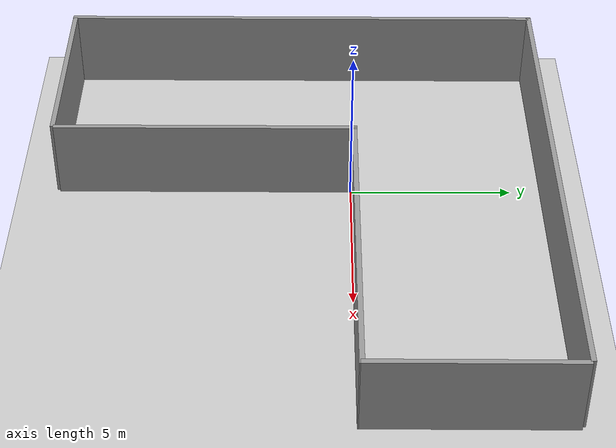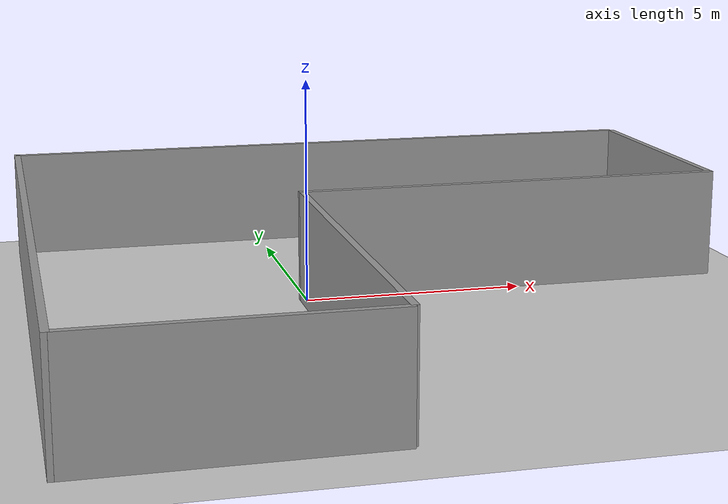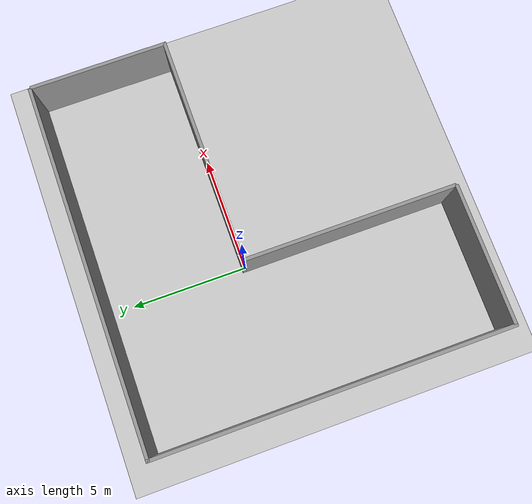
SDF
<sdf version="1.7">
 <world name="default">
  <light name="sun" type="directional">
   <pose>0 0 10 0 -0 0</pose>
   <diffuse>0.8 0.8 0.8 1</diffuse>
   <specular>0.2 0.2 0.2 1</specular>
   <attenuation>
    <range>1000</range>
    <constant>0.9</constant>
    <linear>0.01</linear>
    <quadratic>0.001</quadratic>
   </attenuation>
   <direction>-0.5 0.1 -0.9</direction>
   <spot><inner_angle>0</inner_angle><outer_angle>0</outer_angle><falloff>0</falloff></spot>
  </light>
  <model name="ground_plane">
   <static>1</static>
   <link name="link">
    <collision name="collision">
     <geometry><plane><normal>0 0 1</normal><size>100 100</size></plane></geometry>
     <surface><friction><ode><mu>100</mu><mu2>50</mu2></ode></friction></surface>
    </collision>
    <visual name="visual">
     <cast_shadows>0</cast_shadows>
     <geometry><plane><normal>0 0 1</normal><size>100 100</size></plane></geometry>
     <material>
      <script><uri>file://media/materials/scripts/gazebo.material</uri><name>Gazebo/Grey</name></script>
     </material>
    </visual>
   </link>
  </model>
  <gravity>0 0 -9.8</gravity>
  <magnetic_field>6e-06 2.3e-05 -4.2e-05</magnetic_field>
  <atmosphere type="adiabatic"/>
  <physics type="ode">
   <max_step_size>0.001</max_step_size>
   <real_time_factor>1</real_time_factor>
   <real_time_update_rate>1000</real_time_update_rate>
  </physics>
  <scene><ambient>0.4 0.4 0.4 1</ambient><background>0.7 0.7 0.7 1</background><shadows>1</shadows></scene>
  <audio><device>default</device></audio>
  <spherical_coordinates>
   <surface_model>EARTH_WGS84</surface_model>
   <latitude_deg>0</latitude_deg>
   <longitude_deg>0</longitude_deg>
   <elevation>0</elevation>
   <heading_deg>0</heading_deg>
  </spherical_coordinates>
  <model name="S1">
   <pose>1.82745 -1.55687 0 0 -0 0</pose>
   <link name="Wall_15">
    <collision name="Wall_15_Collision">
     <geometry><box><size>10 0.15 2.5</size></box></geometry>
     <pose>0 0 1.25 0 -0 0</pose>
    </collision>
    <visual name="Wall_15_Visual">
     <pose>0 0 1.25 0 -0 0</pose>
     <geometry><box><size>10 0.15 2.5</size></box></geometry>
     <material>
      <script><uri>file://media/materials/scripts/gazebo.material</uri><name>Gazebo/Grey</name></script>
      <ambient>1 1 1 1</ambient>
     </material>
     <meta><layer>0</layer></meta>
    </visual>
    <pose>3.01482 1.64039 0 0 -0 0</pose>
   </link>
   <link name="Wall_16">
    <collision name="Wall_16_Collision">
     <geometry><box><size>5.92964 0.15 2.5</size></box></geometry>
     <pose>0 0 1.25 0 -0 0</pose>
    </collision>
    <visual name="Wall_16_Visual">
     <pose>0 0 1.25 0 -0 0</pose>
     <geometry><box><size>5.92964 0.15 2.5</size></box></geometry>
     <material>
      <script><uri>file://media/materials/scripts/gazebo.material</uri><name>Gazebo/Grey</name></script>
      <ambient>1 1 1 1</ambient>
     </material>
     <meta><layer>0</layer></meta>
    </visual>
    <pose>7.93982 4.56539 0 0 -0 1.5708</pose>
   </link>
   <link name="Wall_18">
    <collision name="Wall_18_Collision">
     <geometry><box><size>9.25 0.15 2.5</size></box></geometry>
     <pose>0 0 1.25 0 -0 0</pose>
    </collision>
    <visual name="Wall_18_Visual">
     <pose>0 0 1.25 0 -0 0</pose>
     <geometry><box><size>9.25 0.15 2.5</size></box></geometry>
     <material>
      <script><uri>file://media/materials/scripts/gazebo.material</uri><name>Gazebo/Grey</name></script>
      <ambient>1 1 1 1</ambient>
     </material>
     <meta><layer>0</layer></meta>
    </visual>
    <pose>-1.91018 -2.90961 0 0 -0 -1.5708</pose>
   </link>
   <link name="Wall_2">
    <collision name="Wall_2_Collision">
     <geometry><box><size>15.8945 0.15 2.5</size></box></geometry>
     <pose>0 0 1.25 0 -0 0</pose>
    </collision>
    <visual name="Wall_2_Visual">
     <pose>0 0 1.25 0 -0 0</pose>
     <geometry><box><size>15.8945 0.15 2.5</size></box></geometry>
     <material>
      <script><uri>file://media/materials/scripts/gazebo.material</uri><name>Gazebo/Grey</name></script>
      <ambient>1 1 1 1</ambient>
     </material>
     <meta><layer>0</layer></meta>
    </visual>
    <pose>-0.032411 7.55201 0 0 -0 3.14159</pose>
   </link>
   <link name="Wall_20">
    <collision name="Wall_20_Collision">
     <geometry><box><size>6 0.15 2.5</size></box></geometry>
     <pose>0 0 1.25 0 -0 0</pose>
    </collision>
    <visual name="Wall_20_Visual">
     <pose>0 0 1.25 0 -0 0</pose>
     <geometry><box><size>6 0.15 2.5</size></box></geometry>
     <material>
      <script><uri>file://media/materials/scripts/gazebo.material</uri><name>Gazebo/Grey</name></script>
      <ambient>1 1 1 1</ambient>
     </material>
     <meta><layer>0</layer></meta>
    </visual>
    <pose>-4.90106 -7.55201 0 0 -0 3.14159</pose>
   </link>
   <link name="Wall_5">
    <collision name="Wall_5_Collision">
     <geometry><box><size>15.25 0.15 2.5</size></box></geometry>
     <pose>0 0 1.25 0 -0 0</pose>
    </collision>
    <visual name="Wall_5_Visual">
     <pose>0 0 1.25 0 -0 0</pose>
     <geometry><box><size>15.25 0.15 2.5</size></box></geometry>
     <material>
      <script><uri>file://media/materials/scripts/gazebo.material</uri><name>Gazebo/Grey</name></script>
      <ambient>1 1 1 1</ambient>
     </material>
     <meta><layer>0</layer></meta>
    </visual>
    <pose>-7.93982 0.002008 0 0 -0 -1.5708</pose>
   </link>
   <static>1</static>
  </model>
 </world>
</sdf>
